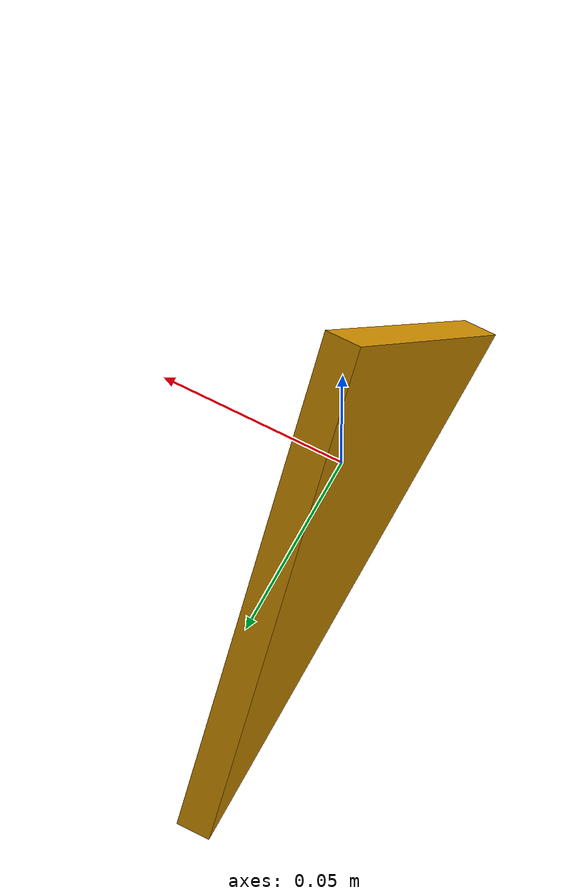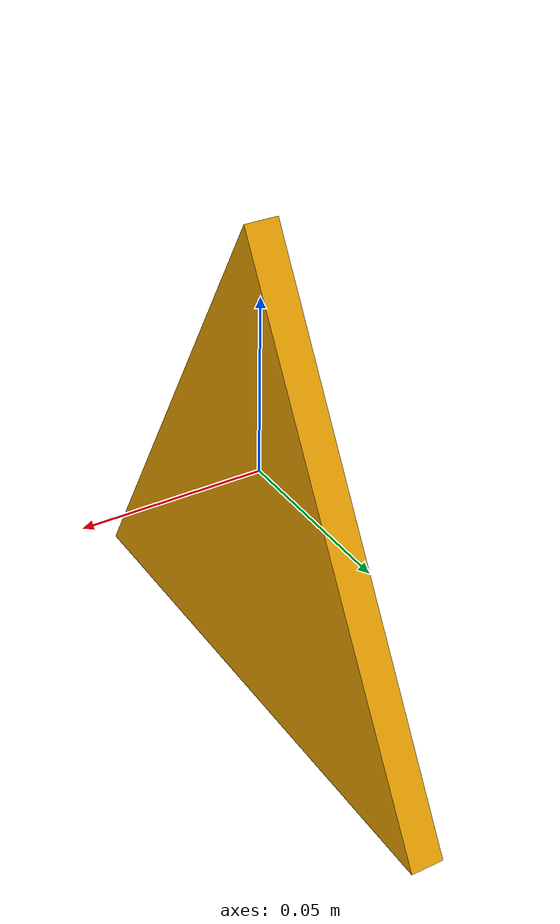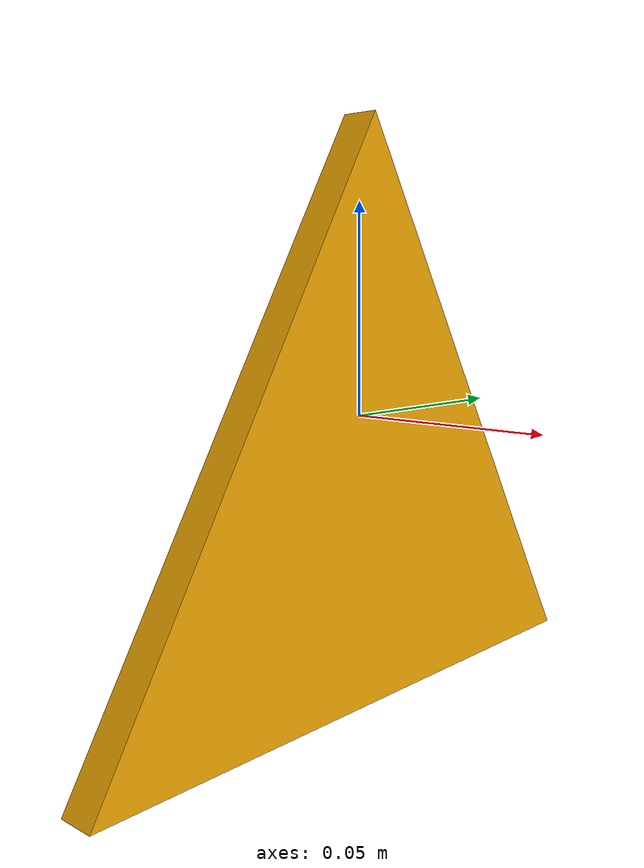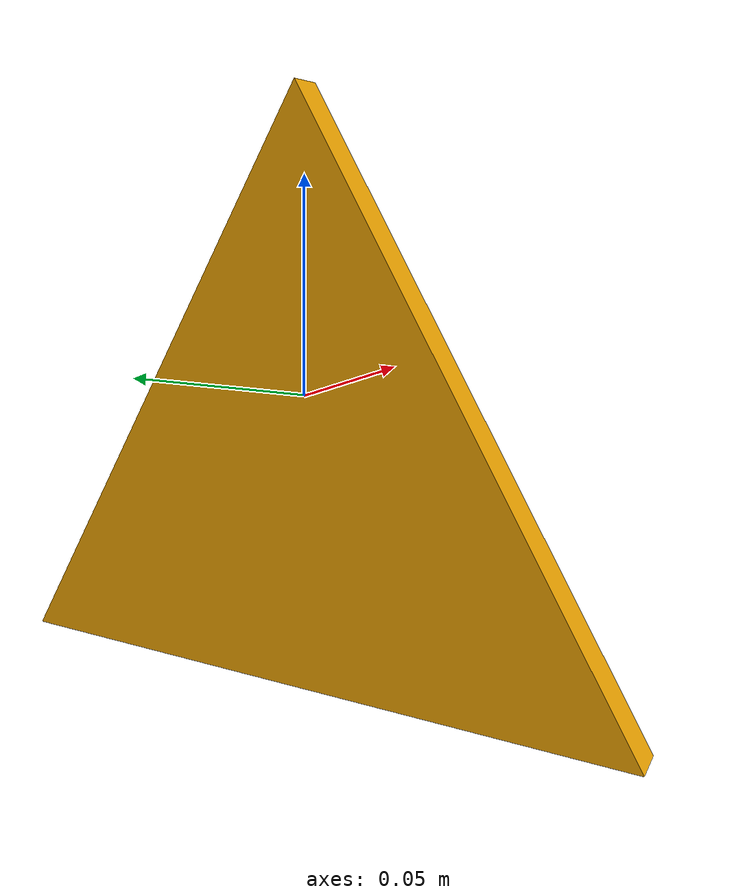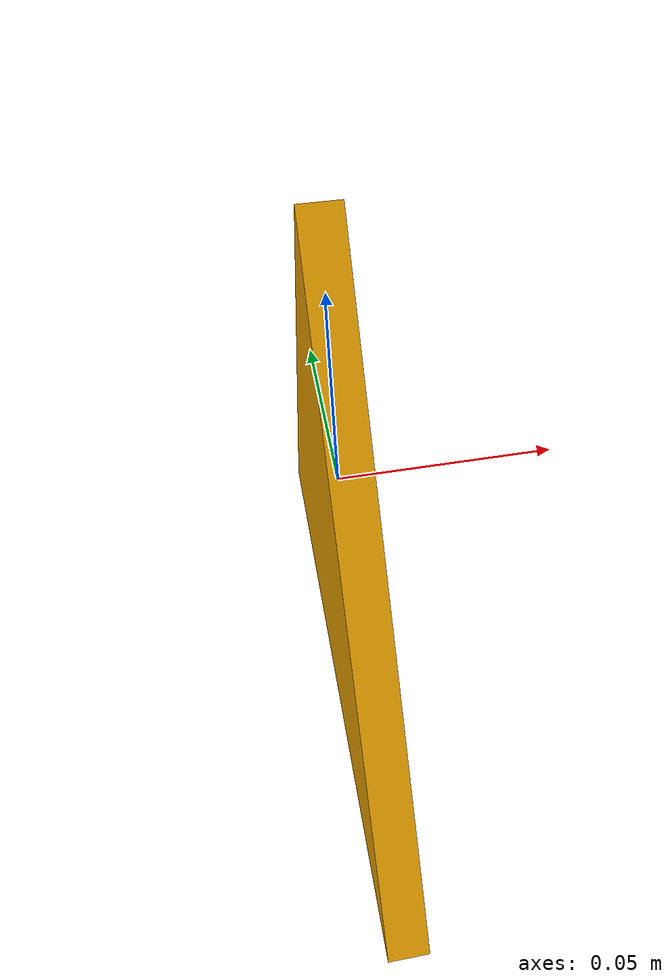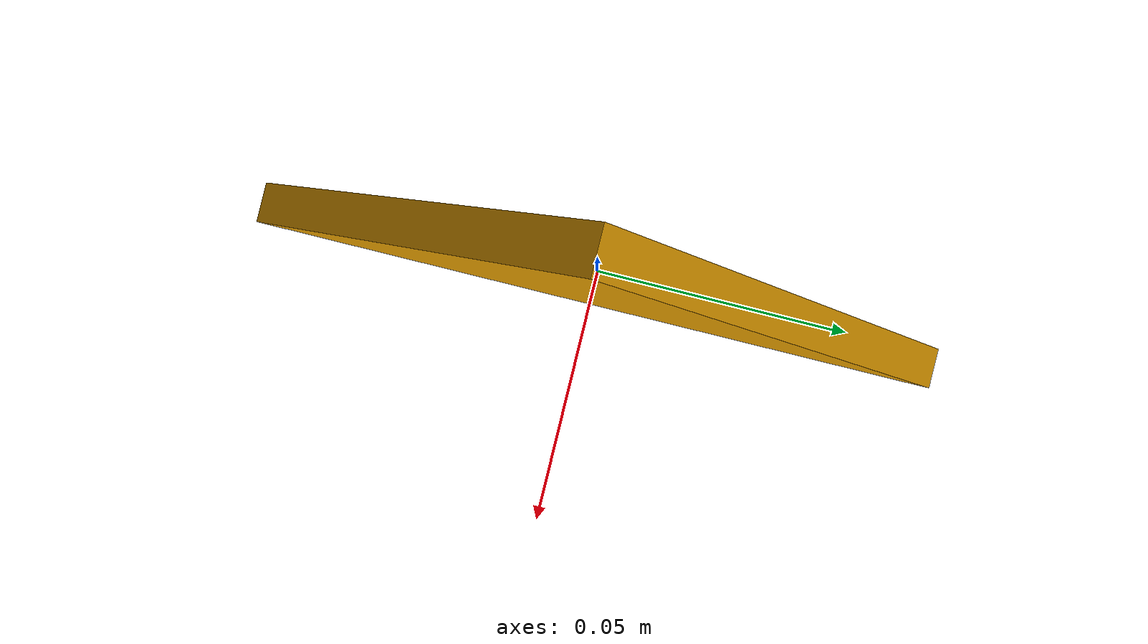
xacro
<?xml version="1.0"?>
<robot xmlns:xacro="http://www.ros.org/wiki/xacro" name="triangle">
    <xacro:property name="height" value="0.14"/>
    <xacro:property name="base" value="${2.0 *sin(radians(60))}"/>
    <xacro:property name="start_height" value="${base * sin(radians(60))}"/>
    <xacro:property name="mesh_scale" value="${height/start_height}"/>
    <xacro:property name="x" value="${0.1 * mesh_scale}"/>
    <xacro:property name="y" value="${base * mesh_scale}"/>
    <xacro:property name="z" value="${start_height * mesh_scale}"/>
    <xacro:property name="base_to_center" value="${cos(radians(60)) * mesh_scale}"/>
    <xacro:property name="offset_z" value="${base_to_center - z/2}"/>
    <xacro:property name="mass" value="1.0"/>
    <link name="base_link">
        <visual>
            <geometry>
                <mesh filename="triangle.obj" scale="${mesh_scale} ${mesh_scale} ${mesh_scale}"/>
            </geometry>
            <origin xyz="0.0 0.0 ${offset_z}" rpy="${radians(-30)} 0.0 0.0"/>
        </visual>
        <collision>
            <geometry>
                <box size="${x} ${y} ${z}"/>
            </geometry>
        </collision>
        <inertial>
            <mass value="${mass}"/>
            <inertia ixx="${mass * (z**2 + y**2) / 12}" ixy="0.0" ixz="0.0"
                     iyy="${mass * (z**2 + x**2) / 12}" iyz="0.0"
                     izz="${mass * (x**2 + y**2) / 12}"/>
        </inertial>
    </link>
</robot>
